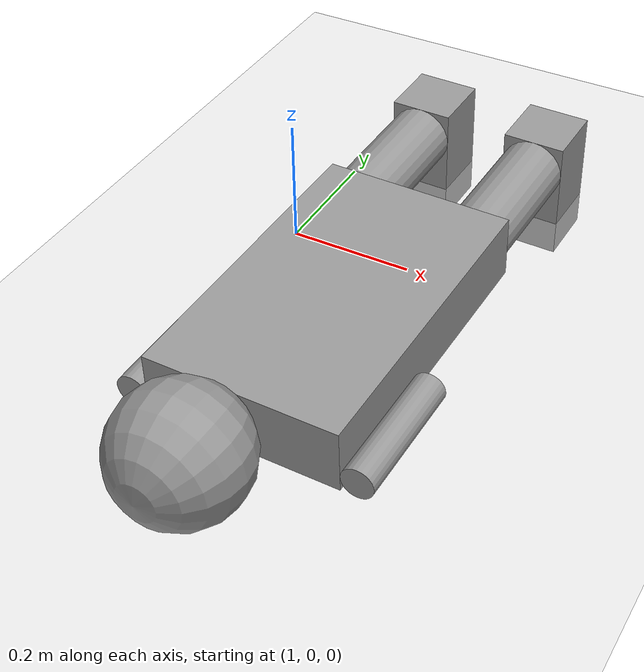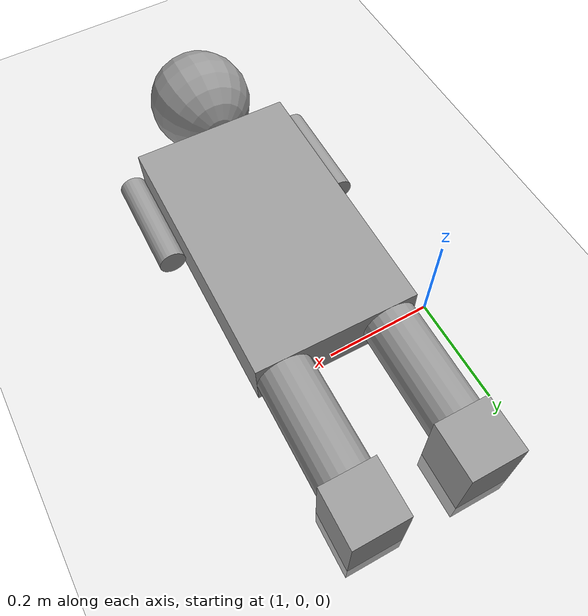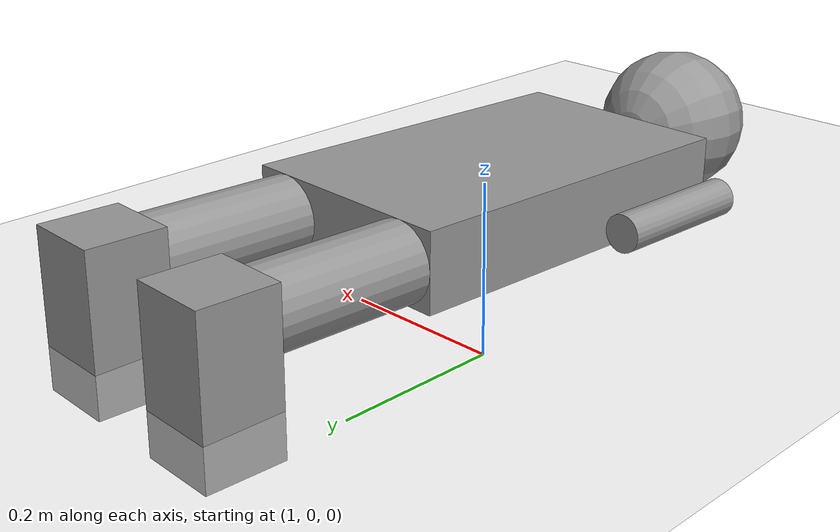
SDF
<sdf version="1.6">
 <world name="default">
  <model name="ground_plane">
   <static>1</static>
   <link name="link">
    <collision name="collision">
     <geometry><plane><normal>0 0 1</normal><size>100 100</size></plane></geometry>
     <surface>
      <contact><collide_bitmask>65535</collide_bitmask></contact>
      <friction><ode><mu>100</mu><mu2>50</mu2></ode></friction>
     </surface>
    </collision>
    <visual name="visual">
     <cast_shadows>0</cast_shadows>
     <geometry><plane><normal>0 0 1</normal><size>100 100</size></plane></geometry>
     <material>
      <script><uri>file://media/materials/scripts/gazebo.material</uri><name>Gazebo/Grey</name></script>
     </material>
    </visual>
   </link>
  </model>
  <model name="UmanBot_clone">
   <link name="link_0">
    <pose>0.0025 0.015625 0.13125 0 -0 0</pose>
    <inertial>
     <mass>1</mass>
     <inertia>
      <ixx>0.166667</ixx>
      <ixy>0</ixy>
      <ixz>0</ixz>
      <iyy>0.166667</iyy>
      <iyz>0</iyz>
      <izz>0.166667</izz>
     </inertia>
    </inertial>
    <visual name="visual">
     <geometry><box><size>0.3 0.1 0.5</size></box></geometry>
     <material>
      <lighting>1</lighting>
      <script><uri>file://media/materials/scripts/gazebo.material</uri><name>Gazebo/Grey</name></script>
      <shader type="pixel"><normal_map>__default__</normal_map></shader>
      <ambient>0.3 0.3 0.3 1</ambient>
      <diffuse>0.7 0.7 0.7 1</diffuse>
      <specular>0.01 0.01 0.01 1</specular>
      <emissive>0 0 0 1</emissive>
     </material>
    </visual>
    <collision name="collision">
     <geometry><box><size>0.3 0.1 0.5</size></box></geometry>
     <surface>
      <friction>
       <ode><mu>1</mu><mu2>1</mu2><fdir1>0 0 0</fdir1><slip1>0</slip1><slip2>0</slip2></ode>
       <torsional>
        <coefficient>1</coefficient>
        <patch_radius>0</patch_radius>
        <surface_radius>0</surface_radius>
        <use_patch_radius>1</use_patch_radius>
        <ode><slip>0</slip></ode>
       </torsional>
      </friction>
      <bounce><restitution_coefficient>0</restitution_coefficient><threshold>1e+06</threshold></bounce>
      <contact>
       <collide_without_contact>0</collide_without_contact>
       <collide_without_contact_bitmask>1</collide_without_contact_bitmask>
       <collide_bitmask>1</collide_bitmask>
       <ode>
        <soft_cfm>0</soft_cfm>
        <soft_erp>0.2</soft_erp>
        <kp>1e+13</kp>
        <kd>1</kd>
        <max_vel>0.01</max_vel>
        <min_depth>0</min_depth>
       </ode>
       <bullet>
        <split_impulse>1</split_impulse>
        <split_impulse_penetration_threshold>-0.01</split_impulse_penetration_threshold>
        <soft_cfm>0</soft_cfm>
        <soft_erp>0.2</soft_erp>
        <kp>1e+13</kp>
        <kd>1</kd>
       </bullet>
      </contact>
     </surface>
    </collision>
   </link>
   <link name="link_3">
    <pose>-0.0175 0.040625 0.48125 0 -0 0</pose>
    <inertial>
     <mass>1</mass>
     <inertia><ixx>0.1</ixx><ixy>0</ixy><ixz>0</ixz><iyy>0.1</iyy><iyz>0</iyz><izz>0.1</izz></inertia>
    </inertial>
    <visual name="visual">
     <geometry><sphere><radius>0.1</radius></sphere></geometry>
     <material>
      <lighting>1</lighting>
      <script><uri>file://media/materials/scripts/gazebo.material</uri><name>Gazebo/Grey</name></script>
      <shader type="pixel"><normal_map>__default__</normal_map></shader>
      <ambient>0.3 0.3 0.3 1</ambient>
      <diffuse>0.7 0.7 0.7 1</diffuse>
      <specular>0.01 0.01 0.01 1</specular>
      <emissive>0 0 0 1</emissive>
     </material>
    </visual>
    <collision name="collision">
     <geometry><sphere><radius>0.1</radius></sphere></geometry>
     <surface>
      <friction>
       <ode><mu>1</mu><mu2>1</mu2><fdir1>0 0 0</fdir1><slip1>0</slip1><slip2>0</slip2></ode>
       <torsional>
        <coefficient>1</coefficient>
        <patch_radius>0</patch_radius>
        <surface_radius>0</surface_radius>
        <use_patch_radius>1</use_patch_radius>
        <ode><slip>0</slip></ode>
       </torsional>
      </friction>
      <bounce><restitution_coefficient>0</restitution_coefficient><threshold>1e+06</threshold></bounce>
      <contact>
       <collide_without_contact>0</collide_without_contact>
       <collide_without_contact_bitmask>1</collide_without_contact_bitmask>
       <collide_bitmask>1</collide_bitmask>
       <ode>
        <soft_cfm>0</soft_cfm>
        <soft_erp>0.2</soft_erp>
        <kp>1e+13</kp>
        <kd>1</kd>
        <max_vel>0.01</max_vel>
        <min_depth>0</min_depth>
       </ode>
       <bullet>
        <split_impulse>1</split_impulse>
        <split_impulse_penetration_threshold>-0.01</split_impulse_penetration_threshold>
        <soft_cfm>0</soft_cfm>
        <soft_erp>0.2</soft_erp>
        <kp>1e+13</kp>
        <kd>1</kd>
       </bullet>
      </contact>
     </surface>
    </collision>
   </link>
   <link name="link_4_clone">
    <pose>0.1025 0.015625 -0.21875 0 -0 0</pose>
    <inertial>
     <mass>1</mass>
     <inertia><ixx>0.145833</ixx><ixy>0</ixy><ixz>0</ixz><iyy>0.145833</iyy><iyz>0</iyz><izz>0.125</izz></inertia>
    </inertial>
    <visual name="visual">
     <geometry><cylinder><radius>0.05</radius><length>0.2</length></cylinder></geometry>
     <material>
      <lighting>1</lighting>
      <script><uri>file://media/materials/scripts/gazebo.material</uri><name>Gazebo/Grey</name></script>
      <shader type="pixel"><normal_map>__default__</normal_map></shader>
      <ambient>0.3 0.3 0.3 1</ambient>
      <diffuse>0.7 0.7 0.7 1</diffuse>
      <specular>0.01 0.01 0.01 1</specular>
      <emissive>0 0 0 1</emissive>
     </material>
    </visual>
    <collision name="collision">
     <geometry><cylinder><radius>0.05</radius><length>0.2</length></cylinder></geometry>
     <surface>
      <friction>
       <ode><mu>1</mu><mu2>1</mu2><fdir1>0 0 0</fdir1><slip1>0</slip1><slip2>0</slip2></ode>
       <torsional>
        <coefficient>1</coefficient>
        <patch_radius>0</patch_radius>
        <surface_radius>0</surface_radius>
        <use_patch_radius>1</use_patch_radius>
        <ode><slip>0</slip></ode>
       </torsional>
      </friction>
      <bounce><restitution_coefficient>0</restitution_coefficient><threshold>1e+06</threshold></bounce>
      <contact>
       <collide_without_contact>0</collide_without_contact>
       <collide_without_contact_bitmask>1</collide_without_contact_bitmask>
       <collide_bitmask>1</collide_bitmask>
       <ode>
        <soft_cfm>0</soft_cfm>
        <soft_erp>0.2</soft_erp>
        <kp>1e+13</kp>
        <kd>1</kd>
        <max_vel>0.01</max_vel>
        <min_depth>0</min_depth>
       </ode>
       <bullet>
        <split_impulse>1</split_impulse>
        <split_impulse_penetration_threshold>-0.01</split_impulse_penetration_threshold>
        <soft_cfm>0</soft_cfm>
        <soft_erp>0.2</soft_erp>
        <kp>1e+13</kp>
        <kd>1</kd>
       </bullet>
      </contact>
     </surface>
    </collision>
   </link>
   <link name="link_4_clone_clone">
    <pose>-0.0975 0.015625 -0.21875 0 -0 0</pose>
    <inertial>
     <mass>1</mass>
     <inertia><ixx>0.145833</ixx><ixy>0</ixy><ixz>0</ixz><iyy>0.145833</iyy><iyz>0</iyz><izz>0.125</izz></inertia>
    </inertial>
    <visual name="visual">
     <geometry><cylinder><radius>0.05</radius><length>0.2</length></cylinder></geometry>
     <material>
      <lighting>1</lighting>
      <script><uri>file://media/materials/scripts/gazebo.material</uri><name>Gazebo/Grey</name></script>
      <shader type="pixel"><normal_map>__default__</normal_map></shader>
      <ambient>0.3 0.3 0.3 1</ambient>
      <diffuse>0.7 0.7 0.7 1</diffuse>
      <specular>0.01 0.01 0.01 1</specular>
      <emissive>0 0 0 1</emissive>
     </material>
    </visual>
    <collision name="collision">
     <geometry><cylinder><radius>0.05</radius><length>0.2</length></cylinder></geometry>
     <surface>
      <friction>
       <ode><mu>1</mu><mu2>1</mu2><fdir1>0 0 0</fdir1><slip1>0</slip1><slip2>0</slip2></ode>
       <torsional>
        <coefficient>1</coefficient>
        <patch_radius>0</patch_radius>
        <surface_radius>0</surface_radius>
        <use_patch_radius>1</use_patch_radius>
        <ode><slip>0</slip></ode>
       </torsional>
      </friction>
      <bounce><restitution_coefficient>0</restitution_coefficient><threshold>1e+06</threshold></bounce>
      <contact>
       <collide_without_contact>0</collide_without_contact>
       <collide_without_contact_bitmask>1</collide_without_contact_bitmask>
       <collide_bitmask>1</collide_bitmask>
       <ode>
        <soft_cfm>0</soft_cfm>
        <soft_erp>0.2</soft_erp>
        <kp>1e+13</kp>
        <kd>1</kd>
        <max_vel>0.01</max_vel>
        <min_depth>0</min_depth>
       </ode>
       <bullet>
        <split_impulse>1</split_impulse>
        <split_impulse_penetration_threshold>-0.01</split_impulse_penetration_threshold>
        <soft_cfm>0</soft_cfm>
        <soft_erp>0.2</soft_erp>
        <kp>1e+13</kp>
        <kd>1</kd>
       </bullet>
      </contact>
     </surface>
    </collision>
   </link>
   <link name="link_6_clone">
    <pose>0.1025 -0.034375 -0.36875 0 -0 0</pose>
    <inertial>
     <mass>1</mass>
     <inertia>
      <ixx>0.166667</ixx>
      <ixy>0</ixy>
      <ixz>0</ixz>
      <iyy>0.166667</iyy>
      <iyz>0</iyz>
      <izz>0.166667</izz>
     </inertia>
    </inertial>
    <visual name="visual">
     <geometry><box><size>0.1 0.2 0.1</size></box></geometry>
     <material>
      <lighting>1</lighting>
      <script><uri>file://media/materials/scripts/gazebo.material</uri><name>Gazebo/Grey</name></script>
      <shader type="pixel"><normal_map>__default__</normal_map></shader>
      <ambient>0.3 0.3 0.3 1</ambient>
      <diffuse>0.7 0.7 0.7 1</diffuse>
      <specular>0.01 0.01 0.01 1</specular>
      <emissive>0 0 0 1</emissive>
     </material>
    </visual>
    <collision name="collision">
     <geometry><box><size>0.1 0.2 0.1</size></box></geometry>
     <surface>
      <friction>
       <ode><mu>1</mu><mu2>1</mu2><fdir1>0 0 0</fdir1><slip1>0</slip1><slip2>0</slip2></ode>
       <torsional>
        <coefficient>1</coefficient>
        <patch_radius>0</patch_radius>
        <surface_radius>0</surface_radius>
        <use_patch_radius>1</use_patch_radius>
        <ode><slip>0</slip></ode>
       </torsional>
      </friction>
      <bounce><restitution_coefficient>0</restitution_coefficient><threshold>1e+06</threshold></bounce>
      <contact>
       <collide_without_contact>0</collide_without_contact>
       <collide_without_contact_bitmask>1</collide_without_contact_bitmask>
       <collide_bitmask>1</collide_bitmask>
       <ode>
        <soft_cfm>0</soft_cfm>
        <soft_erp>0.2</soft_erp>
        <kp>1e+13</kp>
        <kd>1</kd>
        <max_vel>0.01</max_vel>
        <min_depth>0</min_depth>
       </ode>
       <bullet>
        <split_impulse>1</split_impulse>
        <split_impulse_penetration_threshold>-0.01</split_impulse_penetration_threshold>
        <soft_cfm>0</soft_cfm>
        <soft_erp>0.2</soft_erp>
        <kp>1e+13</kp>
        <kd>1</kd>
       </bullet>
      </contact>
     </surface>
    </collision>
   </link>
   <link name="link_6_clone_clone">
    <pose>-0.0975 -0.034375 -0.36875 0 -0 0</pose>
    <inertial>
     <mass>1</mass>
     <inertia>
      <ixx>0.166667</ixx>
      <ixy>0</ixy>
      <ixz>0</ixz>
      <iyy>0.166667</iyy>
      <iyz>0</iyz>
      <izz>0.166667</izz>
     </inertia>
    </inertial>
    <visual name="visual">
     <geometry><box><size>0.1 0.2 0.1</size></box></geometry>
     <material>
      <lighting>1</lighting>
      <script><uri>file://media/materials/scripts/gazebo.material</uri><name>Gazebo/Grey</name></script>
      <shader type="pixel"><normal_map>__default__</normal_map></shader>
      <ambient>0.3 0.3 0.3 1</ambient>
      <diffuse>0.7 0.7 0.7 1</diffuse>
      <specular>0.01 0.01 0.01 1</specular>
      <emissive>0 0 0 1</emissive>
     </material>
    </visual>
    <collision name="collision">
     <geometry><box><size>0.1 0.2 0.1</size></box></geometry>
     <surface>
      <friction>
       <ode><mu>1</mu><mu2>1</mu2><fdir1>0 0 0</fdir1><slip1>0</slip1><slip2>0</slip2></ode>
       <torsional>
        <coefficient>1</coefficient>
        <patch_radius>0</patch_radius>
        <surface_radius>0</surface_radius>
        <use_patch_radius>1</use_patch_radius>
        <ode><slip>0</slip></ode>
       </torsional>
      </friction>
      <bounce><restitution_coefficient>0</restitution_coefficient><threshold>1e+06</threshold></bounce>
      <contact>
       <collide_without_contact>0</collide_without_contact>
       <collide_without_contact_bitmask>1</collide_without_contact_bitmask>
       <collide_bitmask>1</collide_bitmask>
       <ode>
        <soft_cfm>0</soft_cfm>
        <soft_erp>0.2</soft_erp>
        <kp>1e+13</kp>
        <kd>1</kd>
        <max_vel>0.01</max_vel>
        <min_depth>0</min_depth>
       </ode>
       <bullet>
        <split_impulse>1</split_impulse>
        <split_impulse_penetration_threshold>-0.01</split_impulse_penetration_threshold>
        <soft_cfm>0</soft_cfm>
        <soft_erp>0.2</soft_erp>
        <kp>1e+13</kp>
        <kd>1</kd>
       </bullet>
      </contact>
     </surface>
    </collision>
   </link>
   <link name="link_7_clone">
    <pose>-0.1725 -0.009375 0.28125 0 -0 0</pose>
    <inertial>
     <mass>1</mass>
     <inertia><ixx>0.145833</ixx><ixy>0</ixy><ixz>0</ixz><iyy>0.145833</iyy><iyz>0</iyz><izz>0.125</izz></inertia>
    </inertial>
    <visual name="visual">
     <geometry><cylinder><radius>0.025</radius><length>0.2</length></cylinder></geometry>
     <material>
      <lighting>1</lighting>
      <script><uri>file://media/materials/scripts/gazebo.material</uri><name>Gazebo/Grey</name></script>
      <shader type="pixel"><normal_map>__default__</normal_map></shader>
      <ambient>0.3 0.3 0.3 1</ambient>
      <diffuse>0.7 0.7 0.7 1</diffuse>
      <specular>0.01 0.01 0.01 1</specular>
      <emissive>0 0 0 1</emissive>
     </material>
    </visual>
    <collision name="collision">
     <geometry><cylinder><radius>0.025</radius><length>0.2</length></cylinder></geometry>
     <surface>
      <friction>
       <ode><mu>1</mu><mu2>1</mu2><fdir1>0 0 0</fdir1><slip1>0</slip1><slip2>0</slip2></ode>
       <torsional>
        <coefficient>1</coefficient>
        <patch_radius>0</patch_radius>
        <surface_radius>0</surface_radius>
        <use_patch_radius>1</use_patch_radius>
        <ode><slip>0</slip></ode>
       </torsional>
      </friction>
      <bounce><restitution_coefficient>0</restitution_coefficient><threshold>1e+06</threshold></bounce>
      <contact>
       <collide_without_contact>0</collide_without_contact>
       <collide_without_contact_bitmask>1</collide_without_contact_bitmask>
       <collide_bitmask>1</collide_bitmask>
       <ode>
        <soft_cfm>0</soft_cfm>
        <soft_erp>0.2</soft_erp>
        <kp>1e+13</kp>
        <kd>1</kd>
        <max_vel>0.01</max_vel>
        <min_depth>0</min_depth>
       </ode>
       <bullet>
        <split_impulse>1</split_impulse>
        <split_impulse_penetration_threshold>-0.01</split_impulse_penetration_threshold>
        <soft_cfm>0</soft_cfm>
        <soft_erp>0.2</soft_erp>
        <kp>1e+13</kp>
        <kd>1</kd>
       </bullet>
      </contact>
     </surface>
    </collision>
   </link>
   <link name="link_7_clone_clone">
    <pose>0.1775 -0.009375 0.28125 0 -0 0</pose>
    <inertial>
     <mass>1</mass>
     <inertia><ixx>0.145833</ixx><ixy>0</ixy><ixz>0</ixz><iyy>0.145833</iyy><iyz>0</iyz><izz>0.125</izz></inertia>
    </inertial>
    <visual name="visual">
     <geometry><cylinder><radius>0.025</radius><length>0.2</length></cylinder></geometry>
     <material>
      <lighting>1</lighting>
      <script><uri>file://media/materials/scripts/gazebo.material</uri><name>Gazebo/Grey</name></script>
      <shader type="pixel"><normal_map>__default__</normal_map></shader>
      <ambient>0.3 0.3 0.3 1</ambient>
      <diffuse>0.7 0.7 0.7 1</diffuse>
      <specular>0.01 0.01 0.01 1</specular>
      <emissive>0 0 0 1</emissive>
     </material>
    </visual>
    <collision name="collision">
     <geometry><cylinder><radius>0.025</radius><length>0.2</length></cylinder></geometry>
     <surface>
      <friction>
       <ode><mu>1</mu><mu2>1</mu2><fdir1>0 0 0</fdir1><slip1>0</slip1><slip2>0</slip2></ode>
       <torsional>
        <coefficient>1</coefficient>
        <patch_radius>0</patch_radius>
        <surface_radius>0</surface_radius>
        <use_patch_radius>1</use_patch_radius>
        <ode><slip>0</slip></ode>
       </torsional>
      </friction>
      <bounce><restitution_coefficient>0</restitution_coefficient><threshold>1e+06</threshold></bounce>
      <contact>
       <collide_without_contact>0</collide_without_contact>
       <collide_without_contact_bitmask>1</collide_without_contact_bitmask>
       <collide_bitmask>1</collide_bitmask>
       <ode>
        <soft_cfm>0</soft_cfm>
        <soft_erp>0.2</soft_erp>
        <kp>1e+13</kp>
        <kd>1</kd>
        <max_vel>0.01</max_vel>
        <min_depth>0</min_depth>
       </ode>
       <bullet>
        <split_impulse>1</split_impulse>
        <split_impulse_penetration_threshold>-0.01</split_impulse_penetration_threshold>
        <soft_cfm>0</soft_cfm>
        <soft_erp>0.2</soft_erp>
        <kp>1e+13</kp>
        <kd>1</kd>
       </bullet>
      </contact>
     </surface>
    </collision>
   </link>
   <joint name="link_0_JOINT_0" type="fixed">
    <parent>link_0</parent>
    <child>link_3</child>
    <physics>
     <ode><limit><cfm>0</cfm><erp>0.2</erp></limit><suspension><cfm>0</cfm><erp>0.2</erp></suspension></ode>
    </physics>
   </joint>
   <joint name="link_0_JOINT_10" type="revolute">
    <parent>link_0</parent>
    <child>link_7_clone_clone</child>
    <axis>
     <xyz>1 0 0</xyz>
     <use_parent_model_frame>0</use_parent_model_frame>
     <limit>
      <lower>-1.79769e+308</lower>
      <upper>1.79769e+308</upper>
      <effort>-1</effort>
      <velocity>-1</velocity>
     </limit>
     <dynamics>
      <spring_reference>0</spring_reference>
      <spring_stiffness>0</spring_stiffness>
      <damping>0</damping>
     </dynamics>
    </axis>
    <physics>
     <ode><limit><cfm>0</cfm><erp>0.2</erp></limit><suspension><cfm>0</cfm><erp>0.2</erp></suspension></ode>
    </physics>
   </joint>
   <joint name="link_0_JOINT_2" type="ball">
    <parent>link_0</parent>
    <child>link_4_clone</child>
    <physics>
     <ode><limit><cfm>0</cfm><erp>0.2</erp></limit><suspension><cfm>0</cfm><erp>0.2</erp></suspension></ode>
    </physics>
   </joint>
   <joint name="link_0_JOINT_6" type="ball">
    <parent>link_0</parent>
    <child>link_4_clone_clone</child>
    <physics>
     <ode><limit><cfm>0</cfm><erp>0.2</erp></limit><suspension><cfm>0</cfm><erp>0.2</erp></suspension></ode>
    </physics>
   </joint>
   <joint name="link_0_JOINT_9" type="revolute">
    <parent>link_0</parent>
    <child>link_7_clone</child>
    <axis>
     <xyz>1 0 0</xyz>
     <use_parent_model_frame>0</use_parent_model_frame>
     <limit>
      <lower>-1.79769e+308</lower>
      <upper>1.79769e+308</upper>
      <effort>-1</effort>
      <velocity>-1</velocity>
     </limit>
     <dynamics>
      <spring_reference>0</spring_reference>
      <spring_stiffness>0</spring_stiffness>
      <damping>0</damping>
     </dynamics>
    </axis>
    <physics>
     <ode><limit><cfm>0</cfm><erp>0.2</erp></limit><suspension><cfm>0</cfm><erp>0.2</erp></suspension></ode>
    </physics>
   </joint>
   <joint name="link_4_clone_JOINT_3" type="fixed">
    <parent>link_4_clone</parent>
    <child>link_6_clone</child>
    <physics>
     <ode><limit><cfm>0</cfm><erp>0.2</erp></limit><suspension><cfm>0</cfm><erp>0.2</erp></suspension></ode>
    </physics>
   </joint>
   <joint name="link_4_clone_clone_JOINT_8" type="fixed">
    <parent>link_4_clone_clone</parent>
    <child>link_6_clone_clone</child>
    <physics>
     <ode><limit><cfm>0</cfm><erp>0.2</erp></limit><suspension><cfm>0</cfm><erp>0.2</erp></suspension></ode>
    </physics>
   </joint>
   <static>0</static>
   <pose>1.19992 -0.094746 0.069305 1.59143 -8e-06 -0.022397</pose>
  </model>
 </world>
</sdf>
